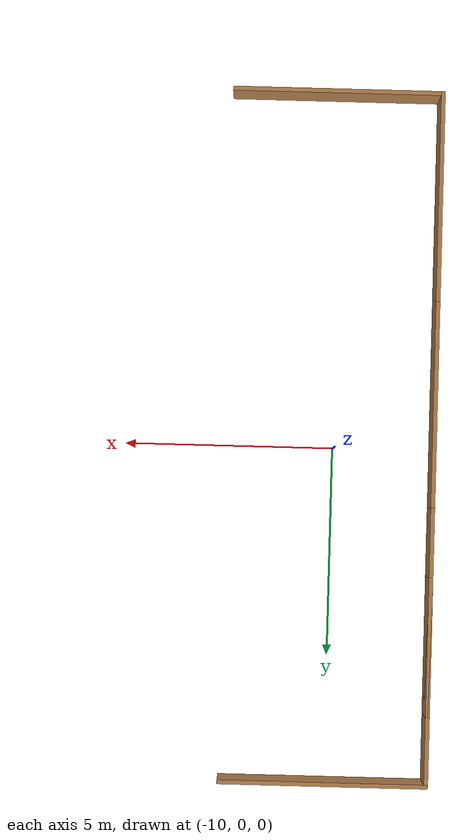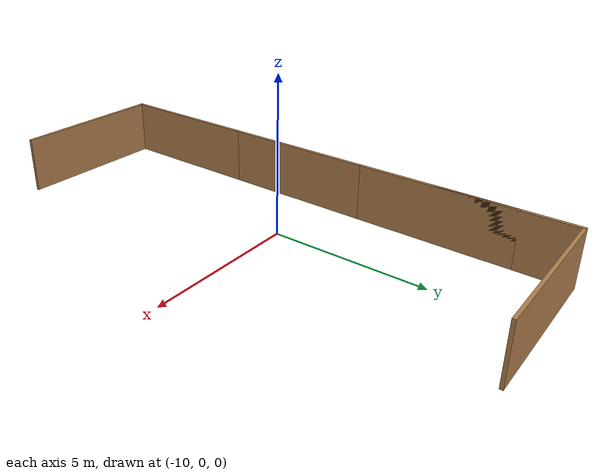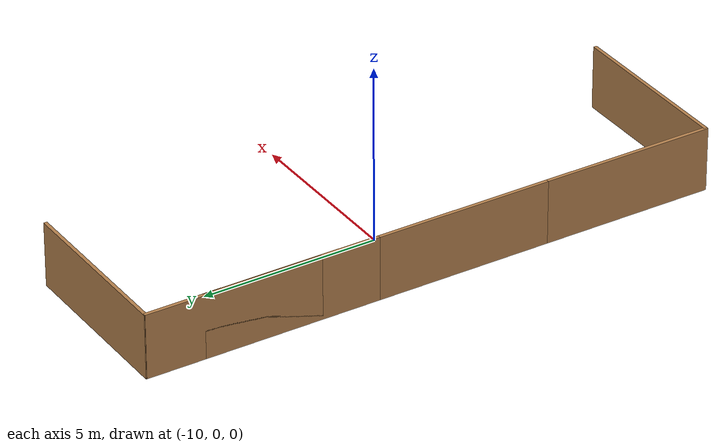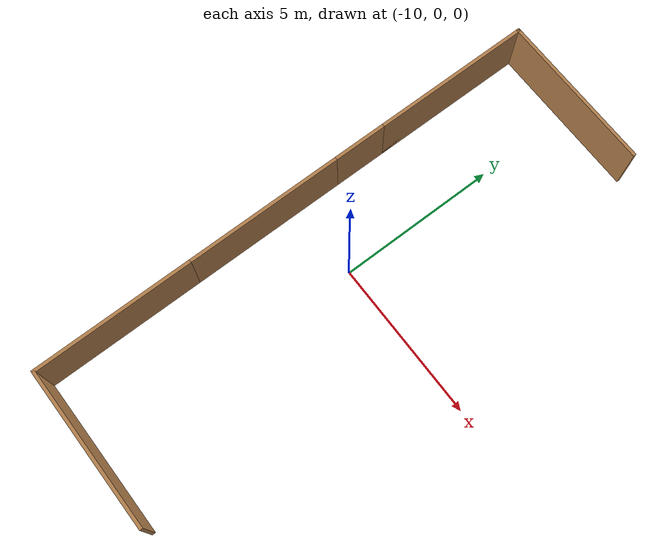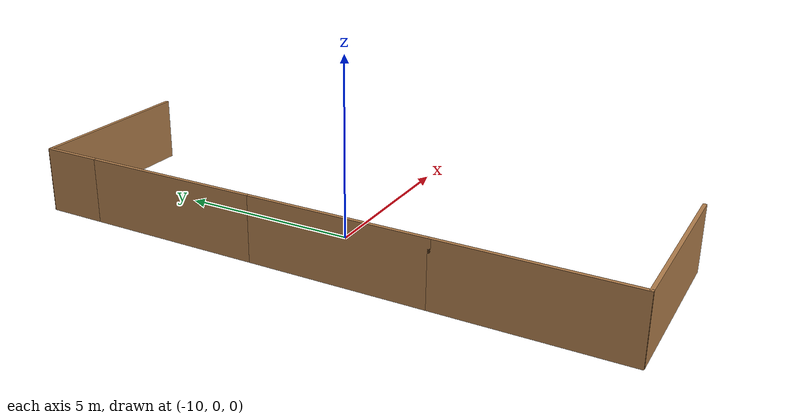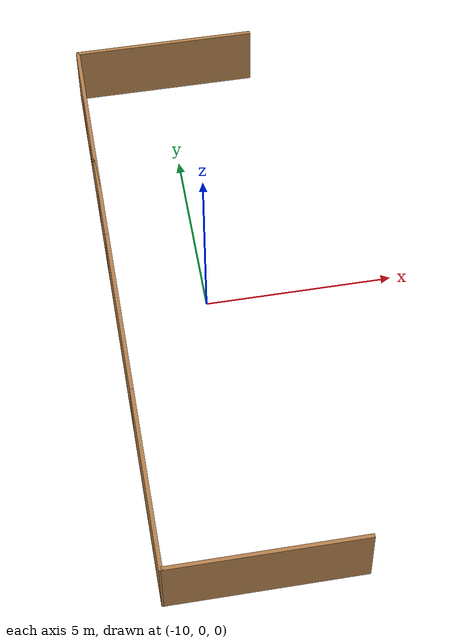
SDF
<sdf version="1.7">
 <world name="default">
  <model name="fence_clone_1">
   <static>1</static>
   <link name="link">
    <pose>0 0 0.915 0 -0 0</pose>
    <collision name="collision"><geometry><box><size>0.1 5 1.83</size></box></geometry></collision>
    <visual name="visual">
     <cast_shadows>0</cast_shadows>
     <geometry><box><size>0.1 5 1.83</size></box></geometry>
     <material>
      <script>
       <uri>https://fuel.ignitionrobotics.org/1.0/athackst/models/fence/2/files/materials/scripts</uri>
       <uri>https://fuel.ignitionrobotics.org/1.0/athackst/models/fence/2/files/materials/textures</uri>
       <name>Fence/WoodBoarding</name>
      </script>
     </material>
    </visual>
   </link>
   <pose>-12.4 3.86653 0 0 -0 0</pose>
  </model>
  <model name="fence_clone_2">
   <static>1</static>
   <link name="link">
    <pose>0 0 0.915 0 -0 0</pose>
    <collision name="collision"><geometry><box><size>0.1 5 1.83</size></box></geometry></collision>
    <visual name="visual">
     <cast_shadows>0</cast_shadows>
     <geometry><box><size>0.1 5 1.83</size></box></geometry>
     <material>
      <script>
       <uri>https://fuel.ignitionrobotics.org/1.0/athackst/models/fence/2/files/materials/scripts</uri>
       <uri>https://fuel.ignitionrobotics.org/1.0/athackst/models/fence/2/files/materials/textures</uri>
       <name>Fence/WoodBoarding</name>
      </script>
     </material>
    </visual>
   </link>
   <pose>-12.4 -1.1276 0 0 -0 0</pose>
  </model>
  <model name="fence_clone_3">
   <static>1</static>
   <link name="link">
    <pose>0 0 0.915 0 -0 0</pose>
    <collision name="collision"><geometry><box><size>0.1 5 1.83</size></box></geometry></collision>
    <visual name="visual">
     <cast_shadows>0</cast_shadows>
     <geometry><box><size>0.1 5 1.83</size></box></geometry>
     <material>
      <script>
       <uri>https://fuel.ignitionrobotics.org/1.0/athackst/models/fence/2/files/materials/scripts</uri>
       <uri>https://fuel.ignitionrobotics.org/1.0/athackst/models/fence/2/files/materials/textures</uri>
       <name>Fence/WoodBoarding</name>
      </script>
     </material>
    </visual>
   </link>
   <pose>-12.4 -6.04599 0 0 -0 0</pose>
  </model>
  <model name="fence_clone_5">
   <static>1</static>
   <link name="link">
    <pose>0 0 0.915 0 -0 0</pose>
    <collision name="collision"><geometry><box><size>0.1 5 1.83</size></box></geometry></collision>
    <visual name="visual">
     <cast_shadows>0</cast_shadows>
     <geometry><box><size>0.1 5 1.83</size></box></geometry>
     <material>
      <script>
       <uri>https://fuel.ignitionrobotics.org/1.0/athackst/models/fence/2/files/materials/scripts</uri>
       <uri>https://fuel.ignitionrobotics.org/1.0/athackst/models/fence/2/files/materials/textures</uri>
       <name>Fence/WoodBoarding</name>
      </script>
     </material>
    </visual>
   </link>
   <pose>-12.4 5.5287 0 0 -0 0</pose>
  </model>
  <model name="fence_clone_6_clone_clone_1">
   <static>1</static>
   <link name="link">
    <pose>0 0 0.915 0 -0 0</pose>
    <collision name="collision"><geometry><box><size>0.1 5 1.83</size></box></geometry></collision>
    <visual name="visual">
     <cast_shadows>0</cast_shadows>
     <geometry><box><size>0.1 5 1.83</size></box></geometry>
     <material>
      <script>
       <uri>https://fuel.ignitionrobotics.org/1.0/athackst/models/fence/2/files/materials/scripts</uri>
       <uri>https://fuel.ignitionrobotics.org/1.0/athackst/models/fence/2/files/materials/textures</uri>
       <name>Fence/WoodBoarding</name>
      </script>
     </material>
    </visual>
   </link>
   <pose>-9.89934 -8.50006 0 0 -0 1.57076</pose>
  </model>
  <model name="fence_clone_6_clone_clone_10_clone_clone_6_clone_clone_7">
   <static>1</static>
   <link name="link">
    <pose>0 0 0.915 0 -0 0</pose>
    <collision name="collision"><geometry><box><size>0.1 5 1.83</size></box></geometry></collision>
    <visual name="visual">
     <cast_shadows>0</cast_shadows>
     <geometry><box><size>0.1 5 1.83</size></box></geometry>
     <material>
      <script>
       <uri>https://fuel.ignitionrobotics.org/1.0/athackst/models/fence/2/files/materials/scripts</uri>
       <uri>https://fuel.ignitionrobotics.org/1.0/athackst/models/fence/2/files/materials/textures</uri>
       <name>Fence/WoodBoarding</name>
      </script>
     </material>
    </visual>
   </link>
   <pose>-9.93682 8 0 0 0 -1.57078</pose>
  </model>
 </world>
</sdf>
